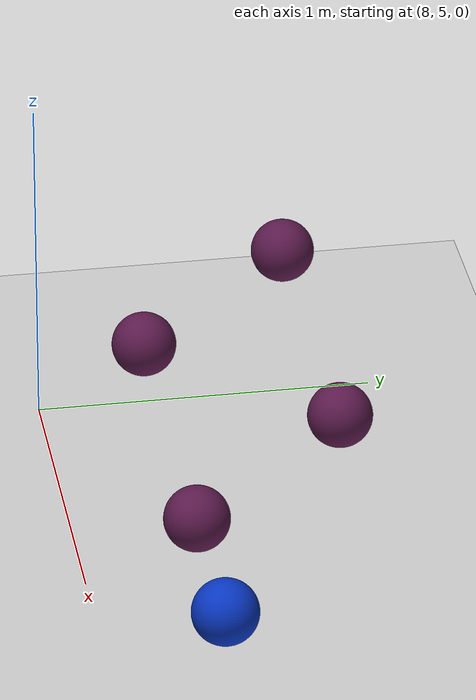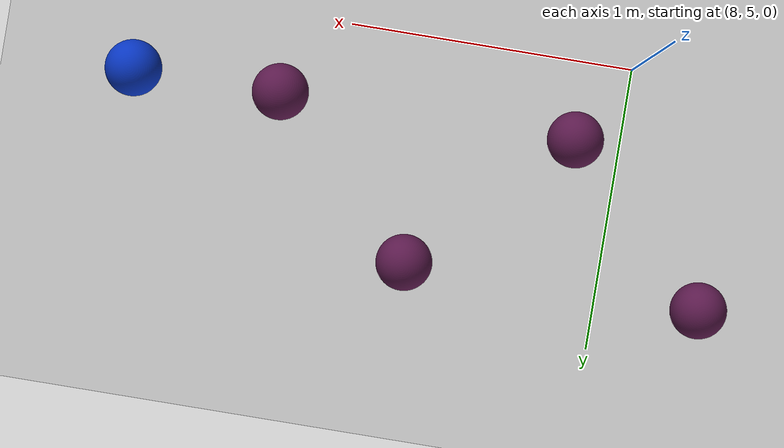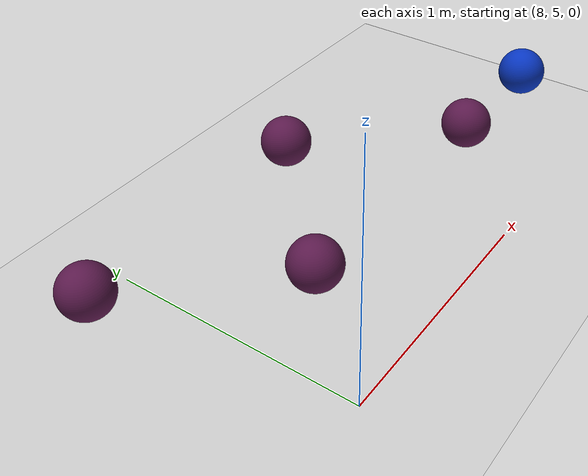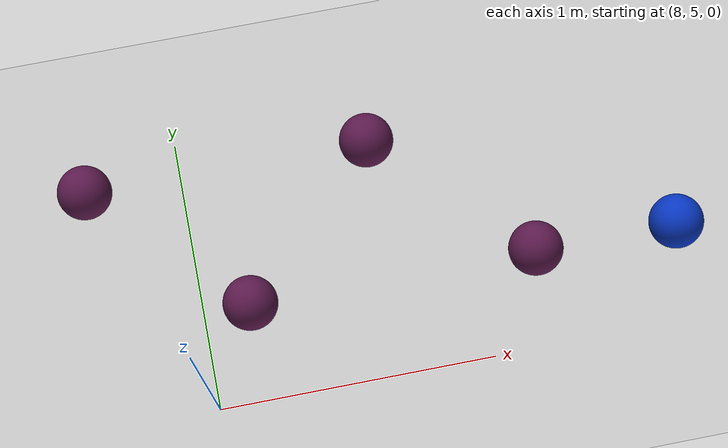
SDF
<sdf version="1.7">
 <world name="default">
  <model name="ground_plane">
   <static>1</static>
   <link name="link">
    <collision name="collision">
     <geometry><plane><normal>0 0 1</normal><size>100 100</size></plane></geometry>
     <surface>
      <contact><collide_bitmask>65535</collide_bitmask></contact>
      <friction><ode><mu>100</mu><mu2>50</mu2></ode></friction>
     </surface>
    </collision>
    <visual name="visual">
     <cast_shadows>0</cast_shadows>
     <geometry><plane><normal>0 0 1</normal><size>100 100</size></plane></geometry>
     <material>
      <script><uri>file://media/materials/scripts/gazebo.material</uri><name>Gazebo/Grey</name></script>
     </material>
    </visual>
   </link>
  </model>
  <model name="ball_empty_clone_5">
   <link name="link_1">
    <inertial>
     <mass>1</mass>
     <inertia>
      <ixx>0.166667</ixx>
      <ixy>0</ixy>
      <ixz>0</ixz>
      <iyy>0.166667</iyy>
      <iyz>0</iyz>
      <izz>0.166667</izz>
     </inertia>
    </inertial>
    <visual name="visual">
     <geometry>
      <mesh>
       <uri>/home/entity014/abu2024_ws/src/abu_description/worlds/ball_empty.dae</uri>
       <scale>1 1 1</scale>
      </mesh>
     </geometry>
    </visual>
    <collision name="collision">
     <geometry>
      <mesh>
       <uri>/home/entity014/abu2024_ws/src/abu_description/worlds/ball_empty.dae</uri>
       <scale>1 1 1</scale>
      </mesh>
     </geometry>
     <surface>
      <friction>
       <ode><mu>1</mu><mu2>1</mu2><fdir1>0 0 0</fdir1><slip1>0</slip1><slip2>0</slip2></ode>
       <torsional>
        <coefficient>1</coefficient>
        <patch_radius>0</patch_radius>
        <surface_radius>0</surface_radius>
        <use_patch_radius>1</use_patch_radius>
        <ode><slip>0</slip></ode>
       </torsional>
      </friction>
      <bounce><restitution_coefficient>0</restitution_coefficient><threshold>1e+06</threshold></bounce>
      <contact>
       <collide_without_contact>0</collide_without_contact>
       <collide_without_contact_bitmask>1</collide_without_contact_bitmask>
       <collide_bitmask>1</collide_bitmask>
       <ode>
        <soft_cfm>0</soft_cfm>
        <soft_erp>0.2</soft_erp>
        <kp>1e+13</kp>
        <kd>1</kd>
        <max_vel>0.01</max_vel>
        <min_depth>0</min_depth>
       </ode>
       <bullet>
        <split_impulse>1</split_impulse>
        <split_impulse_penetration_threshold>-0.01</split_impulse_penetration_threshold>
        <soft_cfm>0</soft_cfm>
        <soft_erp>0.2</soft_erp>
        <kp>1e+13</kp>
        <kd>1</kd>
       </bullet>
      </contact>
     </surface>
    </collision>
   </link>
   <static>0</static>
   <pose>7.68235 5.79116 0.302543 -0.10185 -0.065181 -0.133237</pose>
  </model>
  <model name="ball_empty_clone_6">
   <link name="link_1">
    <inertial>
     <mass>1</mass>
     <inertia>
      <ixx>0.166667</ixx>
      <ixy>0</ixy>
      <ixz>0</ixz>
      <iyy>0.166667</iyy>
      <iyz>0</iyz>
      <izz>0.166667</izz>
     </inertia>
    </inertial>
    <visual name="visual">
     <geometry>
      <mesh>
       <uri>/home/entity014/abu2024_ws/src/abu_description/worlds/ball_empty.dae</uri>
       <scale>1 1 1</scale>
      </mesh>
     </geometry>
    </visual>
    <collision name="collision">
     <geometry>
      <mesh>
       <uri>/home/entity014/abu2024_ws/src/abu_description/worlds/ball_empty.dae</uri>
       <scale>1 1 1</scale>
      </mesh>
     </geometry>
     <surface>
      <friction>
       <ode><mu>1</mu><mu2>1</mu2><fdir1>0 0 0</fdir1><slip1>0</slip1><slip2>0</slip2></ode>
       <torsional>
        <coefficient>1</coefficient>
        <patch_radius>0</patch_radius>
        <surface_radius>0</surface_radius>
        <use_patch_radius>1</use_patch_radius>
        <ode><slip>0</slip></ode>
       </torsional>
      </friction>
      <bounce><restitution_coefficient>0</restitution_coefficient><threshold>1e+06</threshold></bounce>
      <contact>
       <collide_without_contact>0</collide_without_contact>
       <collide_without_contact_bitmask>1</collide_without_contact_bitmask>
       <collide_bitmask>1</collide_bitmask>
       <ode>
        <soft_cfm>0</soft_cfm>
        <soft_erp>0.2</soft_erp>
        <kp>1e+13</kp>
        <kd>1</kd>
        <max_vel>0.01</max_vel>
        <min_depth>0</min_depth>
       </ode>
       <bullet>
        <split_impulse>1</split_impulse>
        <split_impulse_penetration_threshold>-0.01</split_impulse_penetration_threshold>
        <soft_cfm>0</soft_cfm>
        <soft_erp>0.2</soft_erp>
        <kp>1e+13</kp>
        <kd>1</kd>
       </bullet>
      </contact>
     </surface>
    </collision>
   </link>
   <static>0</static>
   <pose>8.18146 5.29249 0.302558 -0.04216 -0.10908 0.102511</pose>
  </model>
  <model name="ball_empty_clone_7">
   <link name="link_1">
    <inertial>
     <mass>1</mass>
     <inertia>
      <ixx>0.166667</ixx>
      <ixy>0</ixy>
      <ixz>0</ixz>
      <iyy>0.166667</iyy>
      <iyz>0</iyz>
      <izz>0.166667</izz>
     </inertia>
    </inertial>
    <visual name="visual">
     <geometry>
      <mesh>
       <uri>/home/entity014/abu2024_ws/src/abu_description/worlds/ball_empty.dae</uri>
       <scale>1 1 1</scale>
      </mesh>
     </geometry>
    </visual>
    <collision name="collision">
     <geometry>
      <mesh>
       <uri>/home/entity014/abu2024_ws/src/abu_description/worlds/ball_empty.dae</uri>
       <scale>1 1 1</scale>
      </mesh>
     </geometry>
     <surface>
      <friction>
       <ode><mu>1</mu><mu2>1</mu2><fdir1>0 0 0</fdir1><slip1>0</slip1><slip2>0</slip2></ode>
       <torsional>
        <coefficient>1</coefficient>
        <patch_radius>0</patch_radius>
        <surface_radius>0</surface_radius>
        <use_patch_radius>1</use_patch_radius>
        <ode><slip>0</slip></ode>
       </torsional>
      </friction>
      <bounce><restitution_coefficient>0</restitution_coefficient><threshold>1e+06</threshold></bounce>
      <contact>
       <collide_without_contact>0</collide_without_contact>
       <collide_without_contact_bitmask>1</collide_without_contact_bitmask>
       <collide_bitmask>1</collide_bitmask>
       <ode>
        <soft_cfm>0</soft_cfm>
        <soft_erp>0.2</soft_erp>
        <kp>1e+13</kp>
        <kd>1</kd>
        <max_vel>0.01</max_vel>
        <min_depth>0</min_depth>
       </ode>
       <bullet>
        <split_impulse>1</split_impulse>
        <split_impulse_penetration_threshold>-0.01</split_impulse_penetration_threshold>
        <soft_cfm>0</soft_cfm>
        <soft_erp>0.2</soft_erp>
        <kp>1e+13</kp>
        <kd>1</kd>
       </bullet>
      </contact>
     </surface>
    </collision>
   </link>
   <static>0</static>
   <pose>8.68242 5.79102 0.302581 -0.210915 0.0334 -0.073544</pose>
  </model>
  <model name="ball_empty_clone_8">
   <link name="link_1">
    <inertial>
     <mass>1</mass>
     <inertia>
      <ixx>0.166667</ixx>
      <ixy>0</ixy>
      <ixz>0</ixz>
      <iyy>0.166667</iyy>
      <iyz>0</iyz>
      <izz>0.166667</izz>
     </inertia>
    </inertial>
    <visual name="visual">
     <geometry>
      <mesh>
       <uri>/home/entity014/abu2024_ws/src/abu_description/worlds/ball_empty.dae</uri>
       <scale>1 1 1</scale>
      </mesh>
     </geometry>
    </visual>
    <collision name="collision">
     <geometry>
      <mesh>
       <uri>/home/entity014/abu2024_ws/src/abu_description/worlds/ball_empty.dae</uri>
       <scale>1 1 1</scale>
      </mesh>
     </geometry>
     <surface>
      <friction>
       <ode><mu>1</mu><mu2>1</mu2><fdir1>0 0 0</fdir1><slip1>0</slip1><slip2>0</slip2></ode>
       <torsional>
        <coefficient>1</coefficient>
        <patch_radius>0</patch_radius>
        <surface_radius>0</surface_radius>
        <use_patch_radius>1</use_patch_radius>
        <ode><slip>0</slip></ode>
       </torsional>
      </friction>
      <bounce><restitution_coefficient>0</restitution_coefficient><threshold>1e+06</threshold></bounce>
      <contact>
       <collide_without_contact>0</collide_without_contact>
       <collide_without_contact_bitmask>1</collide_without_contact_bitmask>
       <collide_bitmask>1</collide_bitmask>
       <ode>
        <soft_cfm>0</soft_cfm>
        <soft_erp>0.2</soft_erp>
        <kp>1e+13</kp>
        <kd>1</kd>
        <max_vel>0.01</max_vel>
        <min_depth>0</min_depth>
       </ode>
       <bullet>
        <split_impulse>1</split_impulse>
        <split_impulse_penetration_threshold>-0.01</split_impulse_penetration_threshold>
        <soft_cfm>0</soft_cfm>
        <soft_erp>0.2</soft_erp>
        <kp>1e+13</kp>
        <kd>1</kd>
       </bullet>
      </contact>
     </surface>
    </collision>
   </link>
   <static>0</static>
   <pose>9.18388 5.29333 0.302566 0.273809 0.017133 0.024336</pose>
  </model>
  <model name="ball_blue_3">
   <link name="link_1">
    <inertial>
     <mass>1</mass>
     <inertia>
      <ixx>0.166667</ixx>
      <ixy>0</ixy>
      <ixz>0</ixz>
      <iyy>0.166667</iyy>
      <iyz>0</iyz>
      <izz>0.166667</izz>
     </inertia>
    </inertial>
    <visual name="visual">
     <geometry>
      <mesh>
       <uri>/home/entity014/abu2024_ws/src/abu_description/worlds/ball_blue.dae</uri>
       <scale>1 1 1</scale>
      </mesh>
     </geometry>
    </visual>
    <collision name="collision">
     <geometry>
      <mesh>
       <uri>/home/entity014/abu2024_ws/src/abu_description/worlds/ball_blue.dae</uri>
       <scale>1 1 1</scale>
      </mesh>
     </geometry>
     <surface>
      <friction>
       <ode><mu>1</mu><mu2>1</mu2><fdir1>0 0 0</fdir1><slip1>0</slip1><slip2>0</slip2></ode>
       <torsional>
        <coefficient>1</coefficient>
        <patch_radius>0</patch_radius>
        <surface_radius>0</surface_radius>
        <use_patch_radius>1</use_patch_radius>
        <ode><slip>0</slip></ode>
       </torsional>
      </friction>
      <bounce><restitution_coefficient>0</restitution_coefficient><threshold>1e+06</threshold></bounce>
      <contact>
       <collide_without_contact>0</collide_without_contact>
       <collide_without_contact_bitmask>1</collide_without_contact_bitmask>
       <collide_bitmask>1</collide_bitmask>
       <ode>
        <soft_cfm>0</soft_cfm>
        <soft_erp>0.2</soft_erp>
        <kp>1e+13</kp>
        <kd>1</kd>
        <max_vel>0.01</max_vel>
        <min_depth>0</min_depth>
       </ode>
       <bullet>
        <split_impulse>1</split_impulse>
        <split_impulse_penetration_threshold>-0.01</split_impulse_penetration_threshold>
        <soft_cfm>0</soft_cfm>
        <soft_erp>0.2</soft_erp>
        <kp>1e+13</kp>
        <kd>1</kd>
       </bullet>
      </contact>
     </surface>
    </collision>
   </link>
   <static>0</static>
   <pose>9.68295 5.29399 0.302561 -0.112327 -0.028658 -0.006351</pose>
  </model>
 </world>
</sdf>
